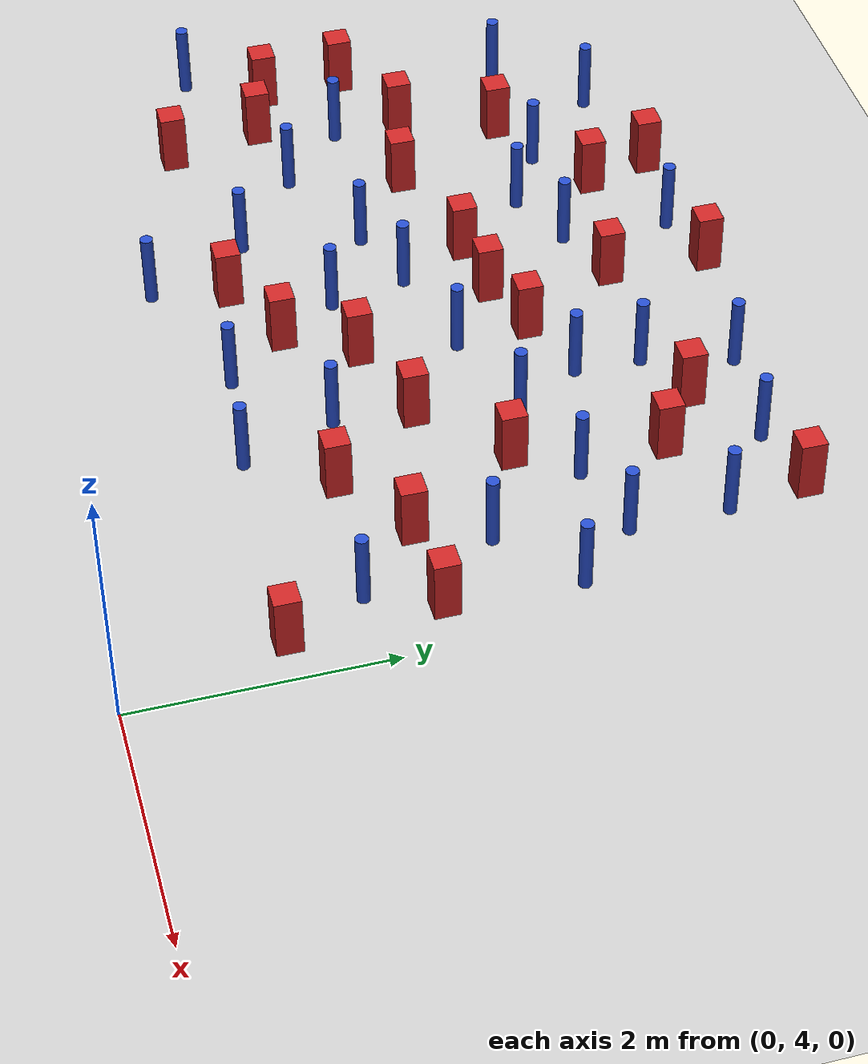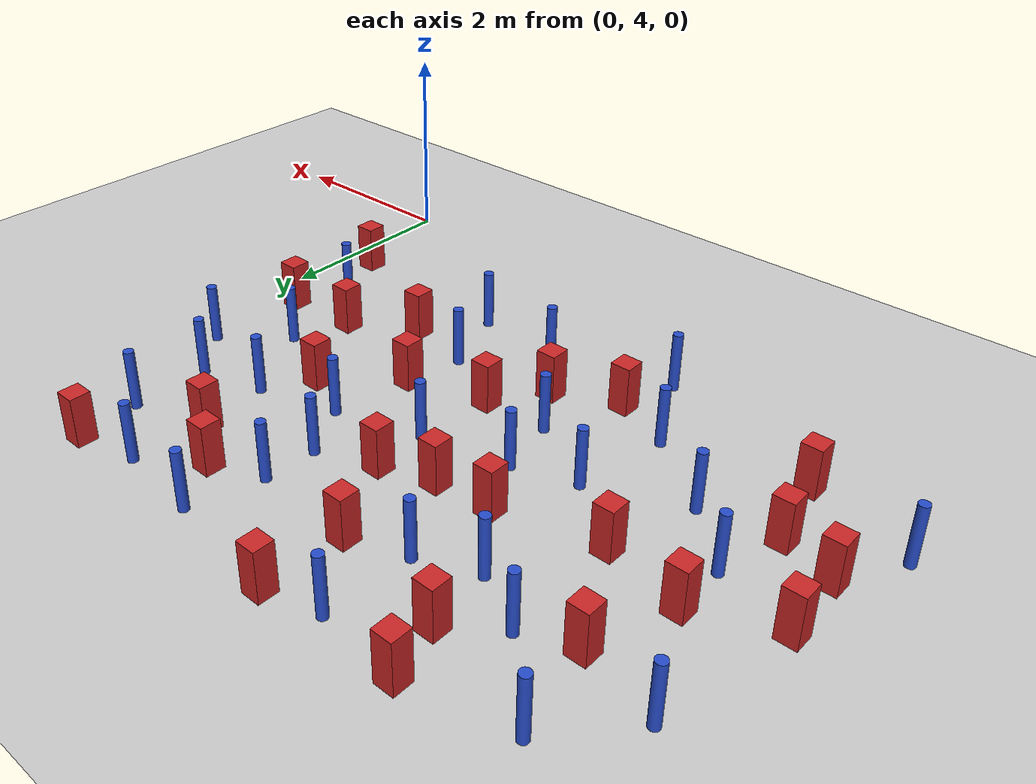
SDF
<sdf version="1.6">
 <world name="default">
  <model name="ground_plane">
   <static>1</static>
   <link name="link">
    <collision name="collision">
     <geometry><plane><normal>0 0 1</normal><size>100 100</size></plane></geometry>
     <surface><friction><ode><mu>100</mu><mu2>50</mu2></ode></friction></surface>
    </collision>
    <visual name="visual">
     <cast_shadows>0</cast_shadows>
     <geometry><plane><normal>0 0 1</normal><size>100 100</size></plane></geometry>
     <material>
      <ambient>1.0 1.0 1.0 1.0</ambient>
      <diffuse>0.8 0.8 0.8 1.0</diffuse>
      <specular>0.01 0.01 0.01 1.000000</specular>
     </material>
    </visual>
   </link>
  </model>
  <model name="pole_obstacle0">
   <static>true</static>
   <pose>-0.767315382043 7.87782411559 7.38925637345e-09 -8.471706928e-08 1.24976765086e-08 -1.74513093015e-07</pose>
   <link name="link">
    <pose>0 0 0.3 0 -0 0</pose>
    <inertial>
     <mass>1</mass>
     <inertia><ixx>0.145833</ixx><ixy>0</ixy><ixz>0</ixz><iyy>0.145833</iyy><iyz>0</iyz><izz>0.125</izz></inertia>
    </inertial>
    <collision name="collision">
     <geometry><cylinder><radius>0.05</radius><length>.6</length></cylinder></geometry>
    </collision>
    <visual name="visual">
     <geometry><cylinder><radius>0.05</radius><length>.6</length></cylinder></geometry>
     <material>
      <script><name>Gazebo/Blue</name><uri>file://media/materials/scripts/gazebo.material</uri></script>
     </material>
    </visual>
   </link>
  </model>
  <model name="pole_obstacle11">
   <static>true</static>
   <pose>-3.04624879508 7.21075002318 7.38925637345e-09 -8.47170692798e-08 1.24976765033e-08 -1.74513093019e-07</pose>
   <link name="link">
    <pose>0 0 0.3 0 -0 0</pose>
    <inertial>
     <mass>1</mass>
     <inertia><ixx>0.145833</ixx><ixy>0</ixy><ixz>0</ixz><iyy>0.145833</iyy><iyz>0</iyz><izz>0.125</izz></inertia>
    </inertial>
    <collision name="collision">
     <geometry><cylinder><radius>0.05</radius><length>.6</length></cylinder></geometry>
    </collision>
    <visual name="visual">
     <geometry><cylinder><radius>0.05</radius><length>.6</length></cylinder></geometry>
     <material>
      <script><name>Gazebo/Blue</name><uri>file://media/materials/scripts/gazebo.material</uri></script>
     </material>
    </visual>
   </link>
  </model>
  <model name="pole_obstacle16">
   <static>true</static>
   <pose>-4.63290541067 8.14702122735 7.38925637345e-09 -8.471706928e-08 1.24976765081e-08 -1.74513093015e-07</pose>
   <link name="link">
    <pose>0 0 0.3 0 -0 0</pose>
    <inertial>
     <mass>1</mass>
     <inertia><ixx>0.145833</ixx><ixy>0</ixy><ixz>0</ixz><iyy>0.145833</iyy><iyz>0</iyz><izz>0.125</izz></inertia>
    </inertial>
    <collision name="collision">
     <geometry><cylinder><radius>0.05</radius><length>.6</length></cylinder></geometry>
    </collision>
    <visual name="visual">
     <geometry><cylinder><radius>0.05</radius><length>.6</length></cylinder></geometry>
     <material>
      <script><name>Gazebo/Blue</name><uri>file://media/materials/scripts/gazebo.material</uri></script>
     </material>
    </visual>
   </link>
  </model>
  <model name="pole_obstacle19">
   <static>true</static>
   <pose>-2.1777607424 5.33182527131 7.38925637345e-09 -8.47170692798e-08 1.24976765033e-08 -1.74513093019e-07</pose>
   <link name="link">
    <pose>0 0 0.3 0 -0 0</pose>
    <inertial>
     <mass>1</mass>
     <inertia><ixx>0.145833</ixx><ixy>0</ixy><ixz>0</ixz><iyy>0.145833</iyy><iyz>0</iyz><izz>0.125</izz></inertia>
    </inertial>
    <collision name="collision">
     <geometry><cylinder><radius>0.05</radius><length>.6</length></cylinder></geometry>
    </collision>
    <visual name="visual">
     <geometry><cylinder><radius>0.05</radius><length>.6</length></cylinder></geometry>
     <material>
      <script><name>Gazebo/Blue</name><uri>file://media/materials/scripts/gazebo.material</uri></script>
     </material>
    </visual>
   </link>
  </model>
  <model name="square_post_obstacle15">
   <static>true</static>
   <pose>-3.47112093157 5.91355686949 1.91545236811e-07 -7.35059704564e-06 1.12565212e-07 2.39332434364e-05</pose>
   <link name="link">
    <pose>0 0 0.25 0 -0 0</pose>
    <inertial>
     <mass>100</mass>
     <inertia>
      <ixx>0.166667</ixx>
      <ixy>0</ixy>
      <ixz>0</ixz>
      <iyy>0.166667</iyy>
      <iyz>0</iyz>
      <izz>0.166667</izz>
     </inertia>
    </inertial>
    <collision name="collision"><geometry><box><size>.2 .2 .5</size></box></geometry></collision>
    <visual name="visual">
     <geometry><box><size>.2 .2 .5</size></box></geometry>
     <material>
      <script><name>Gazebo/Red</name><uri>file://media/materials/scripts/gazebo.material</uri></script>
     </material>
    </visual>
   </link>
  </model>
  <model name="square_post_obstacle16">
   <static>true</static>
   <pose>-5.93682175287 5.54656638047 1.91545236811e-07 -7.35059704564e-06 1.12565212e-07 2.39332434364e-05</pose>
   <link name="link">
    <pose>0 0 0.25 0 -0 0</pose>
    <inertial>
     <mass>100</mass>
     <inertia>
      <ixx>0.166667</ixx>
      <ixy>0</ixy>
      <ixz>0</ixz>
      <iyy>0.166667</iyy>
      <iyz>0</iyz>
      <izz>0.166667</izz>
     </inertia>
    </inertial>
    <collision name="collision"><geometry><box><size>.2 .2 .5</size></box></geometry></collision>
    <visual name="visual">
     <geometry><box><size>.2 .2 .5</size></box></geometry>
     <material>
      <script><name>Gazebo/Red</name><uri>file://media/materials/scripts/gazebo.material</uri></script>
     </material>
    </visual>
   </link>
  </model>
  <model name="pole_obstacle20">
   <static>true</static>
   <pose>-2.44580440727 6.07646398068 7.38925637345e-09 -8.47170692798e-08 1.24976765033e-08 -1.74513093019e-07</pose>
   <link name="link">
    <pose>0 0 0.3 0 -0 0</pose>
    <inertial>
     <mass>1</mass>
     <inertia><ixx>0.145833</ixx><ixy>0</ixy><ixz>0</ixz><iyy>0.145833</iyy><iyz>0</iyz><izz>0.125</izz></inertia>
    </inertial>
    <collision name="collision">
     <geometry><cylinder><radius>0.05</radius><length>.6</length></cylinder></geometry>
    </collision>
    <visual name="visual">
     <geometry><cylinder><radius>0.05</radius><length>.6</length></cylinder></geometry>
     <material>
      <script><name>Gazebo/Blue</name><uri>file://media/materials/scripts/gazebo.material</uri></script>
     </material>
    </visual>
   </link>
  </model>
  <model name="pole_obstacle25">
   <static>true</static>
   <pose>-5.16139553345 8.4390937275 7.38925637345e-09 -8.471706928e-08 1.24976765081e-08 -1.74513093015e-07</pose>
   <link name="link">
    <pose>0 0 0.3 0 -0 0</pose>
    <inertial>
     <mass>1</mass>
     <inertia><ixx>0.145833</ixx><ixy>0</ixy><ixz>0</ixz><iyy>0.145833</iyy><iyz>0</iyz><izz>0.125</izz></inertia>
    </inertial>
    <collision name="collision">
     <geometry><cylinder><radius>0.05</radius><length>.6</length></cylinder></geometry>
    </collision>
    <visual name="visual">
     <geometry><cylinder><radius>0.05</radius><length>.6</length></cylinder></geometry>
     <material>
      <script><name>Gazebo/Blue</name><uri>file://media/materials/scripts/gazebo.material</uri></script>
     </material>
    </visual>
   </link>
  </model>
  <model name="pole_obstacle30">
   <static>true</static>
   <pose>-6.36464147144 8.42947539166 7.38925637345e-09 -8.471706928e-08 1.24976765081e-08 -1.74513093015e-07</pose>
   <link name="link">
    <pose>0 0 0.3 0 -0 0</pose>
    <inertial>
     <mass>1</mass>
     <inertia><ixx>0.145833</ixx><ixy>0</ixy><ixz>0</ixz><iyy>0.145833</iyy><iyz>0</iyz><izz>0.125</izz></inertia>
    </inertial>
    <collision name="collision">
     <geometry><cylinder><radius>0.05</radius><length>.6</length></cylinder></geometry>
    </collision>
    <visual name="visual">
     <geometry><cylinder><radius>0.05</radius><length>.6</length></cylinder></geometry>
     <material>
      <script><name>Gazebo/Blue</name><uri>file://media/materials/scripts/gazebo.material</uri></script>
     </material>
    </visual>
   </link>
  </model>
  <model name="pole_obstacle39">
   <static>true</static>
   <pose>-2.50022270167 8.52372792073 7.38925637345e-09 -8.47170692793e-08 1.24976764408e-08 -1.74513093041e-07</pose>
   <link name="link">
    <pose>0 0 0.3 0 -0 0</pose>
    <inertial>
     <mass>1</mass>
     <inertia><ixx>0.145833</ixx><ixy>0</ixy><ixz>0</ixz><iyy>0.145833</iyy><iyz>0</iyz><izz>0.125</izz></inertia>
    </inertial>
    <collision name="collision">
     <geometry><cylinder><radius>0.05</radius><length>.6</length></cylinder></geometry>
    </collision>
    <visual name="visual">
     <geometry><cylinder><radius>0.05</radius><length>.6</length></cylinder></geometry>
     <material>
      <script><name>Gazebo/Blue</name><uri>file://media/materials/scripts/gazebo.material</uri></script>
     </material>
    </visual>
   </link>
  </model>
  <model name="pole_obstacle41">
   <static>true</static>
   <pose>-0.617984978077 5.86161672736 7.38925637345e-09 -8.471706928e-08 1.24976765086e-08 -1.74513093015e-07</pose>
   <link name="link">
    <pose>0 0 0.3 0 -0 0</pose>
    <inertial>
     <mass>1</mass>
     <inertia><ixx>0.145833</ixx><ixy>0</ixy><ixz>0</ixz><iyy>0.145833</iyy><iyz>0</iyz><izz>0.125</izz></inertia>
    </inertial>
    <collision name="collision">
     <geometry><cylinder><radius>0.05</radius><length>.6</length></cylinder></geometry>
    </collision>
    <visual name="visual">
     <geometry><cylinder><radius>0.05</radius><length>.6</length></cylinder></geometry>
     <material>
      <script><name>Gazebo/Blue</name><uri>file://media/materials/scripts/gazebo.material</uri></script>
     </material>
    </visual>
   </link>
  </model>
  <model name="square_post_obstacle39">
   <static>true</static>
   <pose>-1.52137795441 8.40192280925 1.91545236811e-07 -7.35059704564e-06 1.12565212e-07 2.39332434364e-05</pose>
   <link name="link">
    <pose>0 0 0.25 0 -0 0</pose>
    <inertial>
     <mass>100</mass>
     <inertia>
      <ixx>0.166667</ixx>
      <ixy>0</ixy>
      <ixz>0</ixz>
      <iyy>0.166667</iyy>
      <iyz>0</iyz>
      <izz>0.166667</izz>
     </inertia>
    </inertial>
    <collision name="collision"><geometry><box><size>.2 .2 .5</size></box></geometry></collision>
    <visual name="visual">
     <geometry><box><size>.2 .2 .5</size></box></geometry>
     <material>
      <script><name>Gazebo/Red</name><uri>file://media/materials/scripts/gazebo.material</uri></script>
     </material>
    </visual>
   </link>
  </model>
  <model name="pole_obstacle51">
   <static>true</static>
   <pose>-3.07880505435 5.4324007107 7.38925637345e-09 -8.47170692798e-08 1.24976765033e-08 -1.74513093019e-07</pose>
   <link name="link">
    <pose>0 0 0.3 0 -0 0</pose>
    <inertial>
     <mass>1</mass>
     <inertia><ixx>0.145833</ixx><ixy>0</ixy><ixz>0</ixz><iyy>0.145833</iyy><iyz>0</iyz><izz>0.125</izz></inertia>
    </inertial>
    <collision name="collision">
     <geometry><cylinder><radius>0.05</radius><length>.6</length></cylinder></geometry>
    </collision>
    <visual name="visual">
     <geometry><cylinder><radius>0.05</radius><length>.6</length></cylinder></geometry>
     <material>
      <script><name>Gazebo/Blue</name><uri>file://media/materials/scripts/gazebo.material</uri></script>
     </material>
    </visual>
   </link>
  </model>
  <model name="square_post_obstacle40">
   <static>true</static>
   <pose>-3.09872212878 7.78489160196 1.91545236811e-07 -7.35059704564e-06 1.12565212e-07 2.39332434364e-05</pose>
   <link name="link">
    <pose>0 0 0.25 0 -0 0</pose>
    <inertial>
     <mass>100</mass>
     <inertia>
      <ixx>0.166667</ixx>
      <ixy>0</ixy>
      <ixz>0</ixz>
      <iyy>0.166667</iyy>
      <iyz>0</iyz>
      <izz>0.166667</izz>
     </inertia>
    </inertial>
    <collision name="collision"><geometry><box><size>.2 .2 .5</size></box></geometry></collision>
    <visual name="visual">
     <geometry><box><size>.2 .2 .5</size></box></geometry>
     <material>
      <script><name>Gazebo/Red</name><uri>file://media/materials/scripts/gazebo.material</uri></script>
     </material>
    </visual>
   </link>
  </model>
  <model name="pole_obstacle68">
   <static>true</static>
   <pose>-0.343114002103 7.41182954545 7.38925637345e-09 -8.471706928e-08 1.24976765079e-08 -1.74513093015e-07</pose>
   <link name="link">
    <pose>0 0 0.3 0 -0 0</pose>
    <inertial>
     <mass>1</mass>
     <inertia><ixx>0.145833</ixx><ixy>0</ixy><ixz>0</ixz><iyy>0.145833</iyy><iyz>0</iyz><izz>0.125</izz></inertia>
    </inertial>
    <collision name="collision">
     <geometry><cylinder><radius>0.05</radius><length>.6</length></cylinder></geometry>
    </collision>
    <visual name="visual">
     <geometry><cylinder><radius>0.05</radius><length>.6</length></cylinder></geometry>
     <material>
      <script><name>Gazebo/Blue</name><uri>file://media/materials/scripts/gazebo.material</uri></script>
     </material>
    </visual>
   </link>
  </model>
  <model name="square_post_obstacle54">
   <static>true</static>
   <pose>-0.852692561751 9.26332946201 1.91545236811e-07 -7.35059704564e-06 1.12565212e-07 2.39332434364e-05</pose>
   <link name="link">
    <pose>0 0 0.25 0 -0 0</pose>
    <inertial>
     <mass>100</mass>
     <inertia>
      <ixx>0.166667</ixx>
      <ixy>0</ixy>
      <ixz>0</ixz>
      <iyy>0.166667</iyy>
      <iyz>0</iyz>
      <izz>0.166667</izz>
     </inertia>
    </inertial>
    <collision name="collision"><geometry><box><size>.2 .2 .5</size></box></geometry></collision>
    <visual name="visual">
     <geometry><box><size>.2 .2 .5</size></box></geometry>
     <material>
      <script><name>Gazebo/Red</name><uri>file://media/materials/scripts/gazebo.material</uri></script>
     </material>
    </visual>
   </link>
  </model>
  <model name="square_post_obstacle56">
   <static>true</static>
   <pose>-0.34099617379 5.24803179028 1.91545236811e-07 -7.35059704564e-06 1.12565212e-07 2.39332434364e-05</pose>
   <link name="link">
    <pose>0 0 0.25 0 -0 0</pose>
    <inertial>
     <mass>100</mass>
     <inertia>
      <ixx>0.166667</ixx>
      <ixy>0</ixy>
      <ixz>0</ixz>
      <iyy>0.166667</iyy>
      <iyz>0</iyz>
      <izz>0.166667</izz>
     </inertia>
    </inertial>
    <collision name="collision"><geometry><box><size>.2 .2 .5</size></box></geometry></collision>
    <visual name="visual">
     <geometry><box><size>.2 .2 .5</size></box></geometry>
     <material>
      <script><name>Gazebo/Red</name><uri>file://media/materials/scripts/gazebo.material</uri></script>
     </material>
    </visual>
   </link>
  </model>
  <model name="square_post_obstacle60">
   <static>true</static>
   <pose>-2.35356932138 6.67817230288 1.91545236811e-07 -7.35059704564e-06 1.12565212e-07 2.39332434364e-05</pose>
   <link name="link">
    <pose>0 0 0.25 0 -0 0</pose>
    <inertial>
     <mass>100</mass>
     <inertia>
      <ixx>0.166667</ixx>
      <ixy>0</ixy>
      <ixz>0</ixz>
      <iyy>0.166667</iyy>
      <iyz>0</iyz>
      <izz>0.166667</izz>
     </inertia>
    </inertial>
    <collision name="collision"><geometry><box><size>.2 .2 .5</size></box></geometry></collision>
    <visual name="visual">
     <geometry><box><size>.2 .2 .5</size></box></geometry>
     <material>
      <script><name>Gazebo/Red</name><uri>file://media/materials/scripts/gazebo.material</uri></script>
     </material>
    </visual>
   </link>
  </model>
  <model name="square_post_obstacle68">
   <static>true</static>
   <pose>-3.61023894873 7.61277720491 1.91545236811e-07 -7.35059704564e-06 1.12565212e-07 2.39332434364e-05</pose>
   <link name="link">
    <pose>0 0 0.25 0 -0 0</pose>
    <inertial>
     <mass>100</mass>
     <inertia>
      <ixx>0.166667</ixx>
      <ixy>0</ixy>
      <ixz>0</ixz>
      <iyy>0.166667</iyy>
      <iyz>0</iyz>
      <izz>0.166667</izz>
     </inertia>
    </inertial>
    <collision name="collision"><geometry><box><size>.2 .2 .5</size></box></geometry></collision>
    <visual name="visual">
     <geometry><box><size>.2 .2 .5</size></box></geometry>
     <material>
      <script><name>Gazebo/Red</name><uri>file://media/materials/scripts/gazebo.material</uri></script>
     </material>
    </visual>
   </link>
  </model>
  <model name="pole_obstacle86">
   <static>true</static>
   <pose>-6.93900904245 5.84481902175 7.38925637345e-09 -8.47170692796e-08 1.24976764786e-08 -1.74513093032e-07</pose>
   <link name="link">
    <pose>0 0 0.3 0 -0 0</pose>
    <inertial>
     <mass>1</mass>
     <inertia><ixx>0.145833</ixx><ixy>0</ixy><ixz>0</ixz><iyy>0.145833</iyy><iyz>0</iyz><izz>0.125</izz></inertia>
    </inertial>
    <collision name="collision">
     <geometry><cylinder><radius>0.05</radius><length>.6</length></cylinder></geometry>
    </collision>
    <visual name="visual">
     <geometry><cylinder><radius>0.05</radius><length>.6</length></cylinder></geometry>
     <material>
      <script><name>Gazebo/Blue</name><uri>file://media/materials/scripts/gazebo.material</uri></script>
     </material>
    </visual>
   </link>
  </model>
  <model name="square_post_obstacle82">
   <static>true</static>
   <pose>-3.55019883703 8.58950834365 1.91545236811e-07 -7.35059704564e-06 1.12565212e-07 2.39332434364e-05</pose>
   <link name="link">
    <pose>0 0 0.25 0 -0 0</pose>
    <inertial>
     <mass>100</mass>
     <inertia>
      <ixx>0.166667</ixx>
      <ixy>0</ixy>
      <ixz>0</ixz>
      <iyy>0.166667</iyy>
      <iyz>0</iyz>
      <izz>0.166667</izz>
     </inertia>
    </inertial>
    <collision name="collision"><geometry><box><size>.2 .2 .5</size></box></geometry></collision>
    <visual name="visual">
     <geometry><box><size>.2 .2 .5</size></box></geometry>
     <material>
      <script><name>Gazebo/Red</name><uri>file://media/materials/scripts/gazebo.material</uri></script>
     </material>
    </visual>
   </link>
  </model>
  <model name="square_post_obstacle84">
   <static>true</static>
   <pose>-1.15117717263 6.35205852305 1.91545236811e-07 -7.35059704564e-06 1.12565212e-07 2.39332434364e-05</pose>
   <link name="link">
    <pose>0 0 0.25 0 -0 0</pose>
    <inertial>
     <mass>100</mass>
     <inertia>
      <ixx>0.166667</ixx>
      <ixy>0</ixy>
      <ixz>0</ixz>
      <iyy>0.166667</iyy>
      <iyz>0</iyz>
      <izz>0.166667</izz>
     </inertia>
    </inertial>
    <collision name="collision"><geometry><box><size>.2 .2 .5</size></box></geometry></collision>
    <visual name="visual">
     <geometry><box><size>.2 .2 .5</size></box></geometry>
     <material>
      <script><name>Gazebo/Red</name><uri>file://media/materials/scripts/gazebo.material</uri></script>
     </material>
    </visual>
   </link>
  </model>
  <model name="square_post_obstacle87">
   <static>true</static>
   <pose>-1.77154189331 5.94220180987 1.91545236811e-07 -7.35059704564e-06 1.12565212e-07 2.39332434364e-05</pose>
   <link name="link">
    <pose>0 0 0.25 0 -0 0</pose>
    <inertial>
     <mass>100</mass>
     <inertia>
      <ixx>0.166667</ixx>
      <ixy>0</ixy>
      <ixz>0</ixz>
      <iyy>0.166667</iyy>
      <iyz>0</iyz>
      <izz>0.166667</izz>
     </inertia>
    </inertial>
    <collision name="collision"><geometry><box><size>.2 .2 .5</size></box></geometry></collision>
    <visual name="visual">
     <geometry><box><size>.2 .2 .5</size></box></geometry>
     <material>
      <script><name>Gazebo/Red</name><uri>file://media/materials/scripts/gazebo.material</uri></script>
     </material>
    </visual>
   </link>
  </model>
  <model name="pole_obstacle101">
   <static>true</static>
   <pose>-2.51674438472 8.00031090524 7.38925637345e-09 -8.47170692799e-08 1.24976765028e-08 -1.74513093018e-07</pose>
   <link name="link">
    <pose>0 0 0.3 0 -0 0</pose>
    <inertial>
     <mass>1</mass>
     <inertia><ixx>0.145833</ixx><ixy>0</ixy><ixz>0</ixz><iyy>0.145833</iyy><iyz>0</iyz><izz>0.125</izz></inertia>
    </inertial>
    <collision name="collision">
     <geometry><cylinder><radius>0.05</radius><length>.6</length></cylinder></geometry>
    </collision>
    <visual name="visual">
     <geometry><cylinder><radius>0.05</radius><length>.6</length></cylinder></geometry>
     <material>
      <script><name>Gazebo/Blue</name><uri>file://media/materials/scripts/gazebo.material</uri></script>
     </material>
    </visual>
   </link>
  </model>
  <model name="square_post_obstacle93">
   <static>true</static>
   <pose>-1.71655563513 7.25949136686 1.91545236811e-07 -7.35059704564e-06 1.12565212e-07 2.39332434364e-05</pose>
   <link name="link">
    <pose>0 0 0.25 0 -0 0</pose>
    <inertial>
     <mass>100</mass>
     <inertia>
      <ixx>0.166667</ixx>
      <ixy>0</ixy>
      <ixz>0</ixz>
      <iyy>0.166667</iyy>
      <iyz>0</iyz>
      <izz>0.166667</izz>
     </inertia>
    </inertial>
    <collision name="collision"><geometry><box><size>.2 .2 .5</size></box></geometry></collision>
    <visual name="visual">
     <geometry><box><size>.2 .2 .5</size></box></geometry>
     <material>
      <script><name>Gazebo/Red</name><uri>file://media/materials/scripts/gazebo.material</uri></script>
     </material>
    </visual>
   </link>
  </model>
  <model name="pole_obstacle102">
   <static>true</static>
   <pose>-0.773929226342 8.64864610932 7.38925637345e-09 -8.47170692797e-08 1.249767648e-08 -1.74513093032e-07</pose>
   <link name="link">
    <pose>0 0 0.3 0 -0 0</pose>
    <inertial>
     <mass>1</mass>
     <inertia><ixx>0.145833</ixx><ixy>0</ixy><ixz>0</ixz><iyy>0.145833</iyy><iyz>0</iyz><izz>0.125</izz></inertia>
    </inertial>
    <collision name="collision">
     <geometry><cylinder><radius>0.05</radius><length>.6</length></cylinder></geometry>
    </collision>
    <visual name="visual">
     <geometry><cylinder><radius>0.05</radius><length>.6</length></cylinder></geometry>
     <material>
      <script><name>Gazebo/Blue</name><uri>file://media/materials/scripts/gazebo.material</uri></script>
     </material>
    </visual>
   </link>
  </model>
  <model name="square_post_obstacle101">
   <static>true</static>
   <pose>-6.64057153175 7.12626492344 1.91545236811e-07 -7.35059704564e-06 1.12565212e-07 2.39332434364e-05</pose>
   <link name="link">
    <pose>0 0 0.25 0 -0 0</pose>
    <inertial>
     <mass>100</mass>
     <inertia>
      <ixx>0.166667</ixx>
      <ixy>0</ixy>
      <ixz>0</ixz>
      <iyy>0.166667</iyy>
      <iyz>0</iyz>
      <izz>0.166667</izz>
     </inertia>
    </inertial>
    <collision name="collision"><geometry><box><size>.2 .2 .5</size></box></geometry></collision>
    <visual name="visual">
     <geometry><box><size>.2 .2 .5</size></box></geometry>
     <material>
      <script><name>Gazebo/Red</name><uri>file://media/materials/scripts/gazebo.material</uri></script>
     </material>
    </visual>
   </link>
  </model>
  <model name="pole_obstacle108">
   <static>true</static>
   <pose>-4.04532364941 9.24735916918 7.38925637345e-09 -8.47170692799e-08 1.24976765075e-08 -1.74513093015e-07</pose>
   <link name="link">
    <pose>0 0 0.3 0 -0 0</pose>
    <inertial>
     <mass>1</mass>
     <inertia><ixx>0.145833</ixx><ixy>0</ixy><ixz>0</ixz><iyy>0.145833</iyy><iyz>0</iyz><izz>0.125</izz></inertia>
    </inertial>
    <collision name="collision">
     <geometry><cylinder><radius>0.05</radius><length>.6</length></cylinder></geometry>
    </collision>
    <visual name="visual">
     <geometry><cylinder><radius>0.05</radius><length>.6</length></cylinder></geometry>
     <material>
      <script><name>Gazebo/Blue</name><uri>file://media/materials/scripts/gazebo.material</uri></script>
     </material>
    </visual>
   </link>
  </model>
  <model name="square_post_obstacle108">
   <static>true</static>
   <pose>-4.8569177705 9.32411892654 1.91545236811e-07 -7.35059704564e-06 1.12565212e-07 2.39332434364e-05</pose>
   <link name="link">
    <pose>0 0 0.25 0 -0 0</pose>
    <inertial>
     <mass>100</mass>
     <inertia>
      <ixx>0.166667</ixx>
      <ixy>0</ixy>
      <ixz>0</ixz>
      <iyy>0.166667</iyy>
      <iyz>0</iyz>
      <izz>0.166667</izz>
     </inertia>
    </inertial>
    <collision name="collision"><geometry><box><size>.2 .2 .5</size></box></geometry></collision>
    <visual name="visual">
     <geometry><box><size>.2 .2 .5</size></box></geometry>
     <material>
      <script><name>Gazebo/Red</name><uri>file://media/materials/scripts/gazebo.material</uri></script>
     </material>
    </visual>
   </link>
  </model>
  <model name="pole_obstacle117">
   <static>true</static>
   <pose>-5.90922269776 6.92209432199 7.38925637345e-09 -8.47170692796e-08 1.24976764786e-08 -1.74513093032e-07</pose>
   <link name="link">
    <pose>0 0 0.3 0 -0 0</pose>
    <inertial>
     <mass>1</mass>
     <inertia><ixx>0.145833</ixx><ixy>0</ixy><ixz>0</ixz><iyy>0.145833</iyy><iyz>0</iyz><izz>0.125</izz></inertia>
    </inertial>
    <collision name="collision">
     <geometry><cylinder><radius>0.05</radius><length>.6</length></cylinder></geometry>
    </collision>
    <visual name="visual">
     <geometry><cylinder><radius>0.05</radius><length>.6</length></cylinder></geometry>
     <material>
      <script><name>Gazebo/Blue</name><uri>file://media/materials/scripts/gazebo.material</uri></script>
     </material>
    </visual>
   </link>
  </model>
  <model name="square_post_obstacle133">
   <static>true</static>
   <pose>-5.64618595182 8.24983970334 1.91545236811e-07 -7.35059704564e-06 1.12565212e-07 2.39332434364e-05</pose>
   <link name="link">
    <pose>0 0 0.25 0 -0 0</pose>
    <inertial>
     <mass>100</mass>
     <inertia>
      <ixx>0.166667</ixx>
      <ixy>0</ixy>
      <ixz>0</ixz>
      <iyy>0.166667</iyy>
      <iyz>0</iyz>
      <izz>0.166667</izz>
     </inertia>
    </inertial>
    <collision name="collision"><geometry><box><size>.2 .2 .5</size></box></geometry></collision>
    <visual name="visual">
     <geometry><box><size>.2 .2 .5</size></box></geometry>
     <material>
      <script><name>Gazebo/Red</name><uri>file://media/materials/scripts/gazebo.material</uri></script>
     </material>
    </visual>
   </link>
  </model>
  <model name="square_post_obstacle134">
   <static>true</static>
   <pose>-0.388579570259 6.39148871731 1.91545236811e-07 -7.35059704564e-06 1.12565212e-07 2.39332434364e-05</pose>
   <link name="link">
    <pose>0 0 0.25 0 -0 0</pose>
    <inertial>
     <mass>100</mass>
     <inertia>
      <ixx>0.166667</ixx>
      <ixy>0</ixy>
      <ixz>0</ixz>
      <iyy>0.166667</iyy>
      <iyz>0</iyz>
      <izz>0.166667</izz>
     </inertia>
    </inertial>
    <collision name="collision"><geometry><box><size>.2 .2 .5</size></box></geometry></collision>
    <visual name="visual">
     <geometry><box><size>.2 .2 .5</size></box></geometry>
     <material>
      <script><name>Gazebo/Red</name><uri>file://media/materials/scripts/gazebo.material</uri></script>
     </material>
    </visual>
   </link>
  </model>
  <model name="pole_obstacle140">
   <static>true</static>
   <pose>-0.931050893875 6.89449575699 7.38925637345e-09 -8.471706928e-08 1.24976765086e-08 -1.74513093015e-07</pose>
   <link name="link">
    <pose>0 0 0.3 0 -0 0</pose>
    <inertial>
     <mass>1</mass>
     <inertia><ixx>0.145833</ixx><ixy>0</ixy><ixz>0</ixz><iyy>0.145833</iyy><iyz>0</iyz><izz>0.125</izz></inertia>
    </inertial>
    <collision name="collision">
     <geometry><cylinder><radius>0.05</radius><length>.6</length></cylinder></geometry>
    </collision>
    <visual name="visual">
     <geometry><cylinder><radius>0.05</radius><length>.6</length></cylinder></geometry>
     <material>
      <script><name>Gazebo/Blue</name><uri>file://media/materials/scripts/gazebo.material</uri></script>
     </material>
    </visual>
   </link>
  </model>
  <model name="square_post_obstacle136">
   <static>true</static>
   <pose>-3.51807863218 9.3957606613 1.91545236811e-07 -7.35059704564e-06 1.12565212e-07 2.39332434364e-05</pose>
   <link name="link">
    <pose>0 0 0.25 0 -0 0</pose>
    <inertial>
     <mass>100</mass>
     <inertia>
      <ixx>0.166667</ixx>
      <ixy>0</ixy>
      <ixz>0</ixz>
      <iyy>0.166667</iyy>
      <iyz>0</iyz>
      <izz>0.166667</izz>
     </inertia>
    </inertial>
    <collision name="collision"><geometry><box><size>.2 .2 .5</size></box></geometry></collision>
    <visual name="visual">
     <geometry><box><size>.2 .2 .5</size></box></geometry>
     <material>
      <script><name>Gazebo/Red</name><uri>file://media/materials/scripts/gazebo.material</uri></script>
     </material>
    </visual>
   </link>
  </model>
  <model name="pole_obstacle148">
   <static>true</static>
   <pose>-4.08990472252 8.38481046098 7.38925637345e-09 -8.471706928e-08 1.24976765081e-08 -1.74513093015e-07</pose>
   <link name="link">
    <pose>0 0 0.3 0 -0 0</pose>
    <inertial>
     <mass>1</mass>
     <inertia><ixx>0.145833</ixx><ixy>0</ixy><ixz>0</ixz><iyy>0.145833</iyy><iyz>0</iyz><izz>0.125</izz></inertia>
    </inertial>
    <collision name="collision">
     <geometry><cylinder><radius>0.05</radius><length>.6</length></cylinder></geometry>
    </collision>
    <visual name="visual">
     <geometry><cylinder><radius>0.05</radius><length>.6</length></cylinder></geometry>
     <material>
      <script><name>Gazebo/Blue</name><uri>file://media/materials/scripts/gazebo.material</uri></script>
     </material>
    </visual>
   </link>
  </model>
  <model name="pole_obstacle156">
   <static>true</static>
   <pose>-3.9045634131 7.00399103403 7.38925637345e-09 -8.47170692798e-08 1.24976765033e-08 -1.74513093019e-07</pose>
   <link name="link">
    <pose>0 0 0.3 0 -0 0</pose>
    <inertial>
     <mass>1</mass>
     <inertia><ixx>0.145833</ixx><ixy>0</ixy><ixz>0</ixz><iyy>0.145833</iyy><iyz>0</iyz><izz>0.125</izz></inertia>
    </inertial>
    <collision name="collision">
     <geometry><cylinder><radius>0.05</radius><length>.6</length></cylinder></geometry>
    </collision>
    <visual name="visual">
     <geometry><cylinder><radius>0.05</radius><length>.6</length></cylinder></geometry>
     <material>
      <script><name>Gazebo/Blue</name><uri>file://media/materials/scripts/gazebo.material</uri></script>
     </material>
    </visual>
   </link>
  </model>
  <model name="pole_obstacle158">
   <static>true</static>
   <pose>-5.3833281175 6.40537987015 7.38925637345e-09 -8.47170692796e-08 1.24976764786e-08 -1.74513093032e-07</pose>
   <link name="link">
    <pose>0 0 0.3 0 -0 0</pose>
    <inertial>
     <mass>1</mass>
     <inertia><ixx>0.145833</ixx><ixy>0</ixy><ixz>0</ixz><iyy>0.145833</iyy><iyz>0</iyz><izz>0.125</izz></inertia>
    </inertial>
    <collision name="collision">
     <geometry><cylinder><radius>0.05</radius><length>.6</length></cylinder></geometry>
    </collision>
    <visual name="visual">
     <geometry><cylinder><radius>0.05</radius><length>.6</length></cylinder></geometry>
     <material>
      <script><name>Gazebo/Blue</name><uri>file://media/materials/scripts/gazebo.material</uri></script>
     </material>
    </visual>
   </link>
  </model>
  <model name="pole_obstacle159">
   <static>true</static>
   <pose>-4.25065646081 5.03523139916 7.38925637345e-09 -8.47170692796e-08 1.24976764786e-08 -1.74513093032e-07</pose>
   <link name="link">
    <pose>0 0 0.3 0 -0 0</pose>
    <inertial>
     <mass>1</mass>
     <inertia><ixx>0.145833</ixx><ixy>0</ixy><ixz>0</ixz><iyy>0.145833</iyy><iyz>0</iyz><izz>0.125</izz></inertia>
    </inertial>
    <collision name="collision">
     <geometry><cylinder><radius>0.05</radius><length>.6</length></cylinder></geometry>
    </collision>
    <visual name="visual">
     <geometry><cylinder><radius>0.05</radius><length>.6</length></cylinder></geometry>
     <material>
      <script><name>Gazebo/Blue</name><uri>file://media/materials/scripts/gazebo.material</uri></script>
     </material>
    </visual>
   </link>
  </model>
  <model name="square_post_obstacle166">
   <static>true</static>
   <pose>-4.16660989465 7.55696135561 1.91545236811e-07 -7.35059704564e-06 1.12565212e-07 2.39332434364e-05</pose>
   <link name="link">
    <pose>0 0 0.25 0 -0 0</pose>
    <inertial>
     <mass>100</mass>
     <inertia>
      <ixx>0.166667</ixx>
      <ixy>0</ixy>
      <ixz>0</ixz>
      <iyy>0.166667</iyy>
      <iyz>0</iyz>
      <izz>0.166667</izz>
     </inertia>
    </inertial>
    <collision name="collision"><geometry><box><size>.2 .2 .5</size></box></geometry></collision>
    <visual name="visual">
     <geometry><box><size>.2 .2 .5</size></box></geometry>
     <material>
      <script><name>Gazebo/Red</name><uri>file://media/materials/scripts/gazebo.material</uri></script>
     </material>
    </visual>
   </link>
  </model>
  <model name="pole_obstacle173">
   <static>true</static>
   <pose>-1.44885613197 9.13223860374 7.38925637345e-09 -8.47170692798e-08 1.24976764881e-08 -1.74513093027e-07</pose>
   <link name="link">
    <pose>0 0 0.3 0 -0 0</pose>
    <inertial>
     <mass>1</mass>
     <inertia><ixx>0.145833</ixx><ixy>0</ixy><ixz>0</ixz><iyy>0.145833</iyy><iyz>0</iyz><izz>0.125</izz></inertia>
    </inertial>
    <collision name="collision">
     <geometry><cylinder><radius>0.05</radius><length>.6</length></cylinder></geometry>
    </collision>
    <visual name="visual">
     <geometry><cylinder><radius>0.05</radius><length>.6</length></cylinder></geometry>
     <material>
      <script><name>Gazebo/Blue</name><uri>file://media/materials/scripts/gazebo.material</uri></script>
     </material>
    </visual>
   </link>
  </model>
  <model name="square_post_obstacle173">
   <static>true</static>
   <pose>-2.01161428066 8.74718179939 1.91545236811e-07 -7.35059704564e-06 1.12565212e-07 2.39332434364e-05</pose>
   <link name="link">
    <pose>0 0 0.25 0 -0 0</pose>
    <inertial>
     <mass>100</mass>
     <inertia>
      <ixx>0.166667</ixx>
      <ixy>0</ixy>
      <ixz>0</ixz>
      <iyy>0.166667</iyy>
      <iyz>0</iyz>
      <izz>0.166667</izz>
     </inertia>
    </inertial>
    <collision name="collision"><geometry><box><size>.2 .2 .5</size></box></geometry></collision>
    <visual name="visual">
     <geometry><box><size>.2 .2 .5</size></box></geometry>
     <material>
      <script><name>Gazebo/Red</name><uri>file://media/materials/scripts/gazebo.material</uri></script>
     </material>
    </visual>
   </link>
  </model>
  <model name="pole_obstacle175">
   <static>true</static>
   <pose>-4.66099503675 5.85275843968 7.38925637345e-09 -8.47170692796e-08 1.24976764786e-08 -1.74513093032e-07</pose>
   <link name="link">
    <pose>0 0 0.3 0 -0 0</pose>
    <inertial>
     <mass>1</mass>
     <inertia><ixx>0.145833</ixx><ixy>0</ixy><ixz>0</ixz><iyy>0.145833</iyy><iyz>0</iyz><izz>0.125</izz></inertia>
    </inertial>
    <collision name="collision">
     <geometry><cylinder><radius>0.05</radius><length>.6</length></cylinder></geometry>
    </collision>
    <visual name="visual">
     <geometry><cylinder><radius>0.05</radius><length>.6</length></cylinder></geometry>
     <material>
      <script><name>Gazebo/Blue</name><uri>file://media/materials/scripts/gazebo.material</uri></script>
     </material>
    </visual>
   </link>
  </model>
  <model name="pole_obstacle178">
   <static>true</static>
   <pose>-4.49925548065 6.79989973769 7.38925637345e-09 -8.47170692796e-08 1.24976764786e-08 -1.74513093032e-07</pose>
   <link name="link">
    <pose>0 0 0.3 0 -0 0</pose>
    <inertial>
     <mass>1</mass>
     <inertia><ixx>0.145833</ixx><ixy>0</ixy><ixz>0</ixz><iyy>0.145833</iyy><iyz>0</iyz><izz>0.125</izz></inertia>
    </inertial>
    <collision name="collision">
     <geometry><cylinder><radius>0.05</radius><length>.6</length></cylinder></geometry>
    </collision>
    <visual name="visual">
     <geometry><cylinder><radius>0.05</radius><length>.6</length></cylinder></geometry>
     <material>
      <script><name>Gazebo/Blue</name><uri>file://media/materials/scripts/gazebo.material</uri></script>
     </material>
    </visual>
   </link>
  </model>
  <model name="square_post_obstacle176">
   <static>true</static>
   <pose>-5.14997997076 7.2982745135 1.91545236811e-07 -7.35059704564e-06 1.12565212e-07 2.39332434364e-05</pose>
   <link name="link">
    <pose>0 0 0.25 0 -0 0</pose>
    <inertial>
     <mass>100</mass>
     <inertia>
      <ixx>0.166667</ixx>
      <ixy>0</ixy>
      <ixz>0</ixz>
      <iyy>0.166667</iyy>
      <iyz>0</iyz>
      <izz>0.166667</izz>
     </inertia>
    </inertial>
    <collision name="collision"><geometry><box><size>.2 .2 .5</size></box></geometry></collision>
    <visual name="visual">
     <geometry><box><size>.2 .2 .5</size></box></geometry>
     <material>
      <script><name>Gazebo/Red</name><uri>file://media/materials/scripts/gazebo.material</uri></script>
     </material>
    </visual>
   </link>
  </model>
  <model name="pole_obstacle180">
   <static>true</static>
   <pose>-5.80528416809 9.08817783749 7.38925637345e-09 -8.471706928e-08 1.24976765081e-08 -1.74513093015e-07</pose>
   <link name="link">
    <pose>0 0 0.3 0 -0 0</pose>
    <inertial>
     <mass>1</mass>
     <inertia><ixx>0.145833</ixx><ixy>0</ixy><ixz>0</ixz><iyy>0.145833</iyy><iyz>0</iyz><izz>0.125</izz></inertia>
    </inertial>
    <collision name="collision">
     <geometry><cylinder><radius>0.05</radius><length>.6</length></cylinder></geometry>
    </collision>
    <visual name="visual">
     <geometry><cylinder><radius>0.05</radius><length>.6</length></cylinder></geometry>
     <material>
      <script><name>Gazebo/Blue</name><uri>file://media/materials/scripts/gazebo.material</uri></script>
     </material>
    </visual>
   </link>
  </model>
  <model name="pole_obstacle184">
   <static>true</static>
   <pose>-1.41612685654 7.70818887479 7.38925637345e-09 -8.47170692799e-08 1.24976765033e-08 -1.74513093018e-07</pose>
   <link name="link">
    <pose>0 0 0.3 0 -0 0</pose>
    <inertial>
     <mass>1</mass>
     <inertia><ixx>0.145833</ixx><ixy>0</ixy><ixz>0</ixz><iyy>0.145833</iyy><iyz>0</iyz><izz>0.125</izz></inertia>
    </inertial>
    <collision name="collision">
     <geometry><cylinder><radius>0.05</radius><length>.6</length></cylinder></geometry>
    </collision>
    <visual name="visual">
     <geometry><cylinder><radius>0.05</radius><length>.6</length></cylinder></geometry>
     <material>
      <script><name>Gazebo/Blue</name><uri>file://media/materials/scripts/gazebo.material</uri></script>
     </material>
    </visual>
   </link>
  </model>
  <model name="square_post_obstacle190">
   <static>true</static>
   <pose>-6.09805862928 6.29173208995 1.91545236811e-07 -7.35059704564e-06 1.12565212e-07 2.39332434364e-05</pose>
   <link name="link">
    <pose>0 0 0.25 0 -0 0</pose>
    <inertial>
     <mass>100</mass>
     <inertia>
      <ixx>0.166667</ixx>
      <ixy>0</ixy>
      <ixz>0</ixz>
      <iyy>0.166667</iyy>
      <iyz>0</iyz>
      <izz>0.166667</izz>
     </inertia>
    </inertial>
    <collision name="collision"><geometry><box><size>.2 .2 .5</size></box></geometry></collision>
    <visual name="visual">
     <geometry><box><size>.2 .2 .5</size></box></geometry>
     <material>
      <script><name>Gazebo/Red</name><uri>file://media/materials/scripts/gazebo.material</uri></script>
     </material>
    </visual>
   </link>
  </model>
  <model name="square_post_obstacle191">
   <static>true</static>
   <pose>-5.91285673834 7.46478269422 1.91545236811e-07 -7.35059704564e-06 1.12565212e-07 2.39332434364e-05</pose>
   <link name="link">
    <pose>0 0 0.25 0 -0 0</pose>
    <inertial>
     <mass>100</mass>
     <inertia>
      <ixx>0.166667</ixx>
      <ixy>0</ixy>
      <ixz>0</ixz>
      <iyy>0.166667</iyy>
      <iyz>0</iyz>
      <izz>0.166667</izz>
     </inertia>
    </inertial>
    <collision name="collision"><geometry><box><size>.2 .2 .5</size></box></geometry></collision>
    <visual name="visual">
     <geometry><box><size>.2 .2 .5</size></box></geometry>
     <material>
      <script><name>Gazebo/Red</name><uri>file://media/materials/scripts/gazebo.material</uri></script>
     </material>
    </visual>
   </link>
  </model>
  <model name="square_post_obstacle192">
   <static>true</static>
   <pose>-6.5970015432 6.45583801677 1.91545236811e-07 -7.35059704564e-06 1.12565212e-07 2.39332434364e-05</pose>
   <link name="link">
    <pose>0 0 0.25 0 -0 0</pose>
    <inertial>
     <mass>100</mass>
     <inertia>
      <ixx>0.166667</ixx>
      <ixy>0</ixy>
      <ixz>0</ixz>
      <iyy>0.166667</iyy>
      <iyz>0</iyz>
      <izz>0.166667</izz>
     </inertia>
    </inertial>
    <collision name="collision"><geometry><box><size>.2 .2 .5</size></box></geometry></collision>
    <visual name="visual">
     <geometry><box><size>.2 .2 .5</size></box></geometry>
     <material>
      <script><name>Gazebo/Red</name><uri>file://media/materials/scripts/gazebo.material</uri></script>
     </material>
    </visual>
   </link>
  </model>
  <model name="pole_obstacle189">
   <static>true</static>
   <pose>-2.31182258733 9.22200652512 7.38925637345e-09 -8.47170692793e-08 1.24976764408e-08 -1.74513093041e-07</pose>
   <link name="link">
    <pose>0 0 0.3 0 -0 0</pose>
    <inertial>
     <mass>1</mass>
     <inertia><ixx>0.145833</ixx><ixy>0</ixy><ixz>0</ixz><iyy>0.145833</iyy><iyz>0</iyz><izz>0.125</izz></inertia>
    </inertial>
    <collision name="collision">
     <geometry><cylinder><radius>0.05</radius><length>.6</length></cylinder></geometry>
    </collision>
    <visual name="visual">
     <geometry><cylinder><radius>0.05</radius><length>.6</length></cylinder></geometry>
     <material>
      <script><name>Gazebo/Blue</name><uri>file://media/materials/scripts/gazebo.material</uri></script>
     </material>
    </visual>
   </link>
  </model>
  <model name="pole_obstacle205">
   <static>true</static>
   <pose>-3.77577862834 6.38814542101 7.38925637345e-09 -8.47170692794e-08 1.24976764468e-08 -1.7451309304e-07</pose>
   <link name="link">
    <pose>0 0 0.3 0 -0 0</pose>
    <inertial>
     <mass>1</mass>
     <inertia><ixx>0.145833</ixx><ixy>0</ixy><ixz>0</ixz><iyy>0.145833</iyy><iyz>0</iyz><izz>0.125</izz></inertia>
    </inertial>
    <collision name="collision">
     <geometry><cylinder><radius>0.05</radius><length>.6</length></cylinder></geometry>
    </collision>
    <visual name="visual">
     <geometry><cylinder><radius>0.05</radius><length>.6</length></cylinder></geometry>
     <material>
      <script><name>Gazebo/Blue</name><uri>file://media/materials/scripts/gazebo.material</uri></script>
     </material>
    </visual>
   </link>
  </model>
  <model name="square_post_obstacle212">
   <static>true</static>
   <pose>-4.09480066048 5.62286390666 1.91545236811e-07 -7.35059704564e-06 1.12565212e-07 2.39332434364e-05</pose>
   <link name="link">
    <pose>0 0 0.25 0 -0 0</pose>
    <inertial>
     <mass>100</mass>
     <inertia>
      <ixx>0.166667</ixx>
      <ixy>0</ixy>
      <ixz>0</ixz>
      <iyy>0.166667</iyy>
      <iyz>0</iyz>
      <izz>0.166667</izz>
     </inertia>
    </inertial>
    <collision name="collision"><geometry><box><size>.2 .2 .5</size></box></geometry></collision>
    <visual name="visual">
     <geometry><box><size>.2 .2 .5</size></box></geometry>
     <material>
      <script><name>Gazebo/Red</name><uri>file://media/materials/scripts/gazebo.material</uri></script>
     </material>
    </visual>
   </link>
  </model>
  <model name="square_post_obstacle214">
   <static>true</static>
   <pose>-3.13580966038 6.44228461042 1.91545236811e-07 -7.35059704564e-06 1.12565212e-07 2.39332434364e-05</pose>
   <link name="link">
    <pose>0 0 0.25 0 -0 0</pose>
    <inertial>
     <mass>100</mass>
     <inertia>
      <ixx>0.166667</ixx>
      <ixy>0</ixy>
      <ixz>0</ixz>
      <iyy>0.166667</iyy>
      <iyz>0</iyz>
      <izz>0.166667</izz>
     </inertia>
    </inertial>
    <collision name="collision"><geometry><box><size>.2 .2 .5</size></box></geometry></collision>
    <visual name="visual">
     <geometry><box><size>.2 .2 .5</size></box></geometry>
     <material>
      <script><name>Gazebo/Red</name><uri>file://media/materials/scripts/gazebo.material</uri></script>
     </material>
    </visual>
   </link>
  </model>
  <model name="square_post_obstacle222">
   <static>true</static>
   <pose>-4.72000306408 8.7986935989 1.91545236811e-07 -7.35059704564e-06 1.12565212e-07 2.39332434364e-05</pose>
   <link name="link">
    <pose>0 0 0.25 0 -0 0</pose>
    <inertial>
     <mass>100</mass>
     <inertia>
      <ixx>0.166667</ixx>
      <ixy>0</ixy>
      <ixz>0</ixz>
      <iyy>0.166667</iyy>
      <iyz>0</iyz>
      <izz>0.166667</izz>
     </inertia>
    </inertial>
    <collision name="collision"><geometry><box><size>.2 .2 .5</size></box></geometry></collision>
    <visual name="visual">
     <geometry><box><size>.2 .2 .5</size></box></geometry>
     <material>
      <script><name>Gazebo/Red</name><uri>file://media/materials/scripts/gazebo.material</uri></script>
     </material>
    </visual>
   </link>
  </model>
  <model name="pole_obstacle211">
   <static>true</static>
   <pose>-2.20395787169 7.47202470511 7.38925637345e-09 -8.47170692798e-08 1.24976765033e-08 -1.74513093019e-07</pose>
   <link name="link">
    <pose>0 0 0.3 0 -0 0</pose>
    <inertial>
     <mass>1</mass>
     <inertia><ixx>0.145833</ixx><ixy>0</ixy><ixz>0</ixz><iyy>0.145833</iyy><iyz>0</iyz><izz>0.125</izz></inertia>
    </inertial>
    <collision name="collision">
     <geometry><cylinder><radius>0.05</radius><length>.6</length></cylinder></geometry>
    </collision>
    <visual name="visual">
     <geometry><cylinder><radius>0.05</radius><length>.6</length></cylinder></geometry>
     <material>
      <script><name>Gazebo/Blue</name><uri>file://media/materials/scripts/gazebo.material</uri></script>
     </material>
    </visual>
   </link>
  </model>
 </world>
</sdf>
